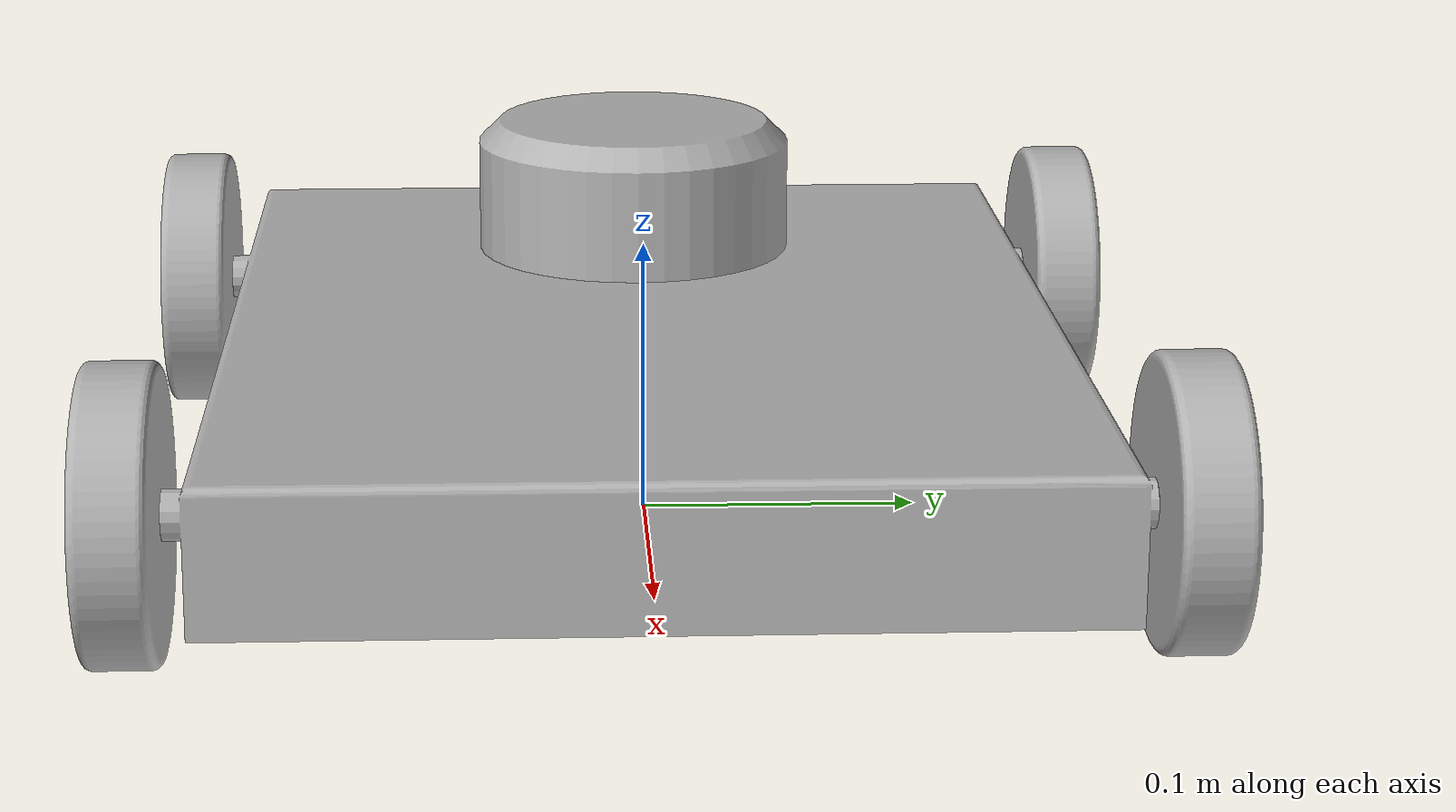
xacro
<?xml version="1.0" ?>
<robot name="Final" xmlns:xacro="http://www.ros.org/wiki/xacro">

<xacro:include filename="$(find Final_description)/urdf/materials.xacro" />
<xacro:include filename="$(find Final_description)/urdf/Final.trans" />
<xacro:include filename="$(find Final_description)/urdf/Final.gazebo" />
<link name="base_link">
  <inertial>
    <origin xyz="-0.008442886732294047 2.2178562645195344e-17 0.054172272263092756" rpy="0 0 0"/>
    <mass value="6.954927778158097"/>
    <inertia ixx="0.051192" iyy="0.093626" izz="0.139294" ixy="0.0" iyz="0.0" ixz="0.002664"/>
  </inertial>
  <visual>
    <origin xyz="0 0 0" rpy="0 0 0"/>
    <geometry>
      <mesh filename="package://Final_description/meshes/base_link.stl" scale="0.001 0.001 0.001"/>
    </geometry>
    <material name="silver"/>
  </visual>
  <collision>
    <origin xyz="0 0 0" rpy="0 0 0"/>
    <geometry>
      <mesh filename="package://Final_description/meshes/base_link.stl" scale="0.001 0.001 0.001"/>
    </geometry>
  </collision>
</link>

<link name="Right_wheel_1_1">
  <inertial>
    <origin xyz="-2.6617597015388128e-14 -0.012500000000000011 6.938893903907228e-18" rpy="0 0 0"/>
    <mass value="0.17621431525883882"/>
    <inertia ixx="0.000122" iyy="0.000225" izz="0.000122" ixy="0.0" iyz="0.0" ixz="0.0"/>
  </inertial>
  <visual>
    <origin xyz="0.15 0.161 -0.05" rpy="0 0 0"/>
    <geometry>
      <mesh filename="package://Final_description/meshes/Right_wheel_1_1.stl" scale="0.001 0.001 0.001"/>
    </geometry>
    <material name="silver"/>
  </visual>
  <collision>
    <origin xyz="0.15 0.161 -0.05" rpy="0 0 0"/>
    <geometry>
      <mesh filename="package://Final_description/meshes/Right_wheel_1_1.stl" scale="0.001 0.001 0.001"/>
    </geometry>
  </collision>
</link>

<link name="Right_wheel_2_1">
  <inertial>
    <origin xyz="2.6617597015388128e-14 -0.012500000000000011 0.0" rpy="0 0 0"/>
    <mass value="0.17621431525883885"/>
    <inertia ixx="0.000122" iyy="0.000225" izz="0.000122" ixy="0.0" iyz="0.0" ixz="-0.0"/>
  </inertial>
  <visual>
    <origin xyz="-0.15 0.161 -0.05" rpy="0 0 0"/>
    <geometry>
      <mesh filename="package://Final_description/meshes/Right_wheel_2_1.stl" scale="0.001 0.001 0.001"/>
    </geometry>
    <material name="silver"/>
  </visual>
  <collision>
    <origin xyz="-0.15 0.161 -0.05" rpy="0 0 0"/>
    <geometry>
      <mesh filename="package://Final_description/meshes/Right_wheel_2_1.stl" scale="0.001 0.001 0.001"/>
    </geometry>
  </collision>
</link>

<link name="Left_wheel_1_1">
  <inertial>
    <origin xyz="-2.6617597015388128e-14 0.012500000000000011 6.938893903907228e-18" rpy="0 0 0"/>
    <mass value="0.17621431525883882"/>
    <inertia ixx="0.000122" iyy="0.000225" izz="0.000122" ixy="-0.0" iyz="0.0" ixz="0.0"/>
  </inertial>
  <visual>
    <origin xyz="0.15 -0.161 -0.05" rpy="0 0 0"/>
    <geometry>
      <mesh filename="package://Final_description/meshes/Left_wheel_1_1.stl" scale="0.001 0.001 0.001"/>
    </geometry>
    <material name="silver"/>
  </visual>
  <collision>
    <origin xyz="0.15 -0.161 -0.05" rpy="0 0 0"/>
    <geometry>
      <mesh filename="package://Final_description/meshes/Left_wheel_1_1.stl" scale="0.001 0.001 0.001"/>
    </geometry>
  </collision>
</link>

<link name="Left_wheel_2_1">
  <inertial>
    <origin xyz="2.6617597015388128e-14 0.012500000000000011 0.0" rpy="0 0 0"/>
    <mass value="0.17621431525883885"/>
    <inertia ixx="0.000122" iyy="0.000225" izz="0.000122" ixy="0.0" iyz="-0.0" ixz="-0.0"/>
  </inertial>
  <visual>
    <origin xyz="-0.15 -0.161 -0.05" rpy="0 0 0"/>
    <geometry>
      <mesh filename="package://Final_description/meshes/Left_wheel_2_1.stl" scale="0.001 0.001 0.001"/>
    </geometry>
    <material name="silver"/>
  </visual>
  <collision>
    <origin xyz="-0.15 -0.161 -0.05" rpy="0 0 0"/>
    <geometry>
      <mesh filename="package://Final_description/meshes/Left_wheel_2_1.stl" scale="0.001 0.001 0.001"/>
    </geometry>
  </collision>
</link>

<joint name="Revolute 1" type="continuous">
  <origin xyz="-0.15 -0.161 0.05" rpy="0 0 0"/>
  <parent link="base_link"/>
  <child link="Right_wheel_1_1"/>
  <axis xyz="0.0 -1.0 0.0"/>
</joint>

<joint name="Revolute 2" type="continuous">
  <origin xyz="0.15 -0.161 0.05" rpy="0 0 0"/>
  <parent link="base_link"/>
  <child link="Right_wheel_2_1"/>
  <axis xyz="0.0 -1.0 0.0"/>
</joint>

<joint name="Revolute 3" type="continuous">
  <origin xyz="-0.15 0.161 0.05" rpy="0 0 0"/>
  <parent link="base_link"/>
  <child link="Left_wheel_1_1"/>
  <axis xyz="0.0 1.0 0.0"/>
</joint>

<joint name="Revolute 4" type="continuous">
  <origin xyz="0.15 0.161 0.05" rpy="0 0 0"/>
  <parent link="base_link"/>
  <child link="Left_wheel_2_1"/>
  <axis xyz="0.0 1.0 0.0"/>
</joint>

</robot>

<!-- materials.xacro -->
<robot name="Final" xmlns:xacro="http://www.ros.org/wiki/xacro" >

<material name="silver">
  <color rgba="0.700 0.700 0.700 1.000"/>
</material>

</robot>

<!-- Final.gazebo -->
<robot name="Final" xmlns:xacro="http://www.ros.org/wiki/xacro" >

<xacro:property name="body_color" value="Gazebo/Silver" />

<gazebo>
  <plugin name="control" filename="libgazebo_ros_control.so"/>
</gazebo>
<gazebo reference="base_link">
  <material>${body_color}</material>
  <mu1>0.2</mu1>
  <mu2>0.2</mu2>
  <selfCollide>true</selfCollide>
  <gravity>true</gravity>
</gazebo>

<gazebo reference="Right_wheel_1_1">
  <material>${body_color}</material>
  <mu1>0.2</mu1>
  <mu2>0.2</mu2>
  <selfCollide>true</selfCollide>
</gazebo>

<gazebo reference="Right_wheel_2_1">
  <material>${body_color}</material>
  <mu1>0.2</mu1>
  <mu2>0.2</mu2>
  <selfCollide>true</selfCollide>
</gazebo>

<gazebo reference="Left_wheel_1_1">
  <material>${body_color}</material>
  <mu1>0.2</mu1>
  <mu2>0.2</mu2>
  <selfCollide>true</selfCollide>
</gazebo>

<gazebo reference="Left_wheel_2_1">
  <material>${body_color}</material>
  <mu1>0.2</mu1>
  <mu2>0.2</mu2>
  <selfCollide>true</selfCollide>
</gazebo>

</robot>
